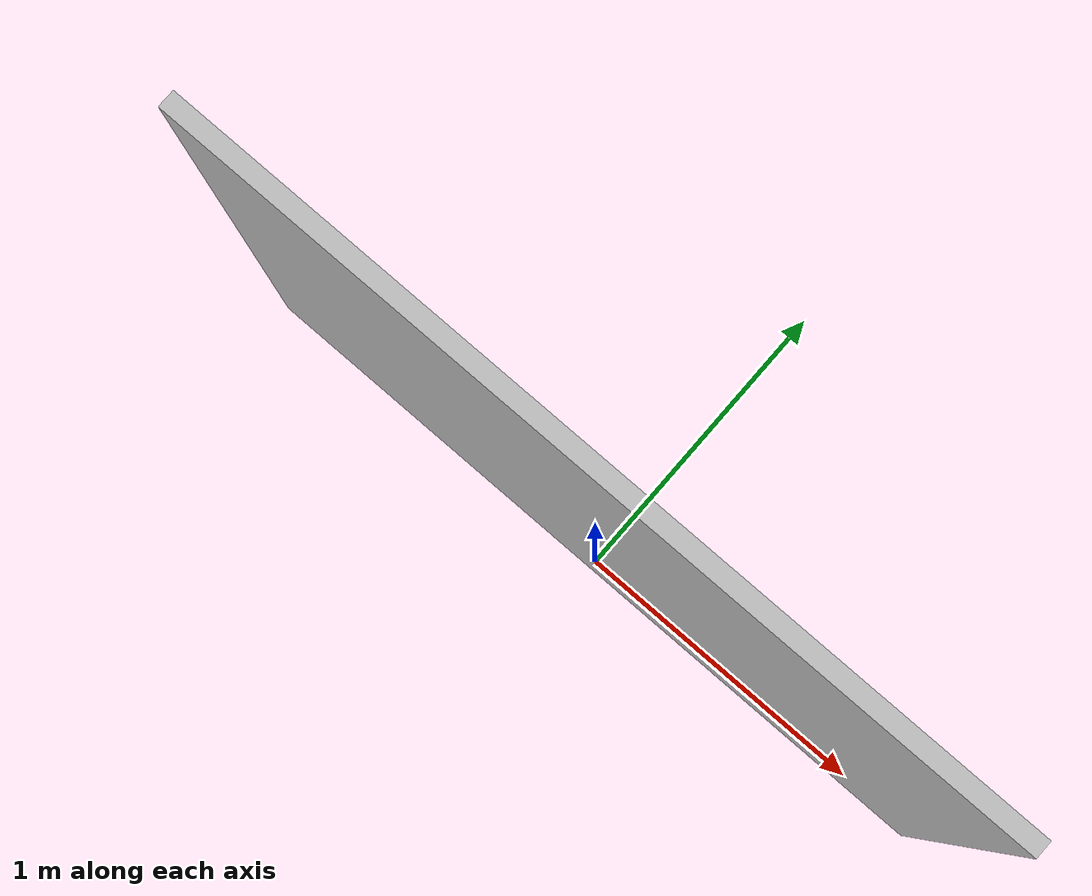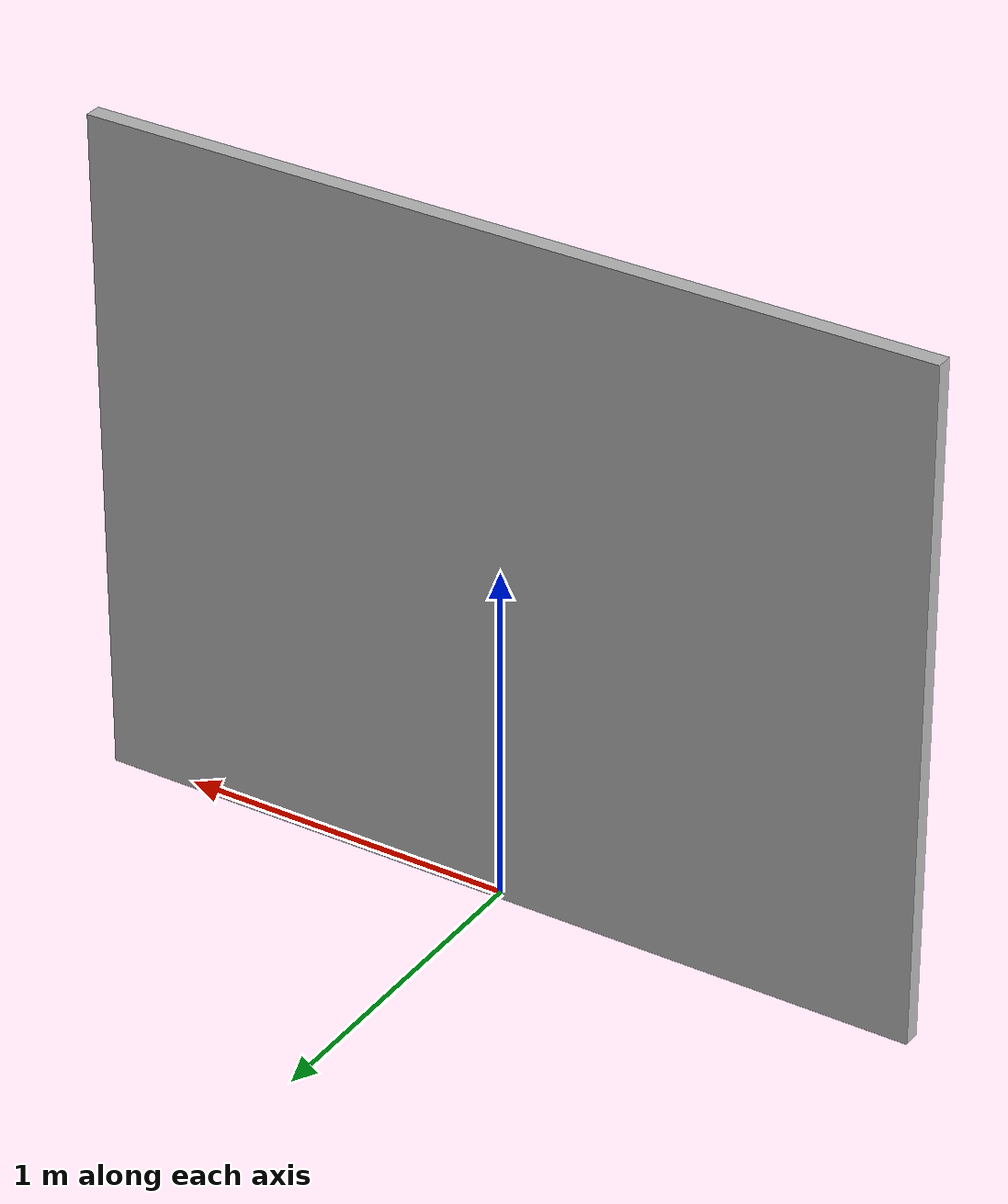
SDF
<?xml version="1.0" ?>
<sdf version="1.3">
    <model name="roller_door">
        <link name="door">
            <gravity>0</gravity>
            <inertial>
                <pose>0 0 0.9 0 0 0</pose>
                <inertia>
                    <ixx>2.7</ixx>
                    <ixy>0</ixy>
                    <ixz>0</ixz>
                    <iyy>3.23</iyy>
                    <iyz>0</iyz>
                    <izz>0.53</izz>
                </inertia>
                <mass>10.0</mass>
            </inertial>
            <collision name="door_geom">
                <pose>0 0 1.0 0 0 0</pose>
                <geometry>
                    <box>
                        <size>2.5 0.05 2.0</size>
                    </box>
                </geometry>
            </collision>
            <visual name="door_geom_visual">
                <pose>0 0 1.0 0 0 0</pose>
                <geometry>
                    <box>
                        <size>2.5 0.05 2.0</size>
                    </box>
                </geometry>
                <material>
                    <script>
                        <uri>file://media/materials/scripts/gazebo.material</uri>
                        <name>Gazebo/Steps</name>
                    </script>
                </material>
            </visual>
        </link>

    <joint name="rail" type="prismatic">
      <parent>world</parent>
      <child>door</child>
      <pose>0 0 0 0 0 0</pose>
      <axis>
        <dynamics>
            <damping>0.3</damping>
        </dynamics>
        <limit>
          <lower>0</lower>
          <upper>1.8</upper>
        </limit>
        <xyz>0 0 1</xyz>
      </axis>
    </joint>

    </model>
</sdf>
